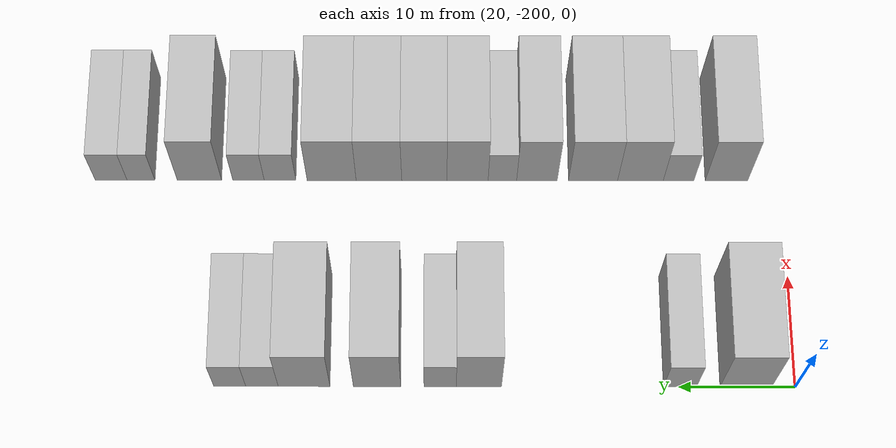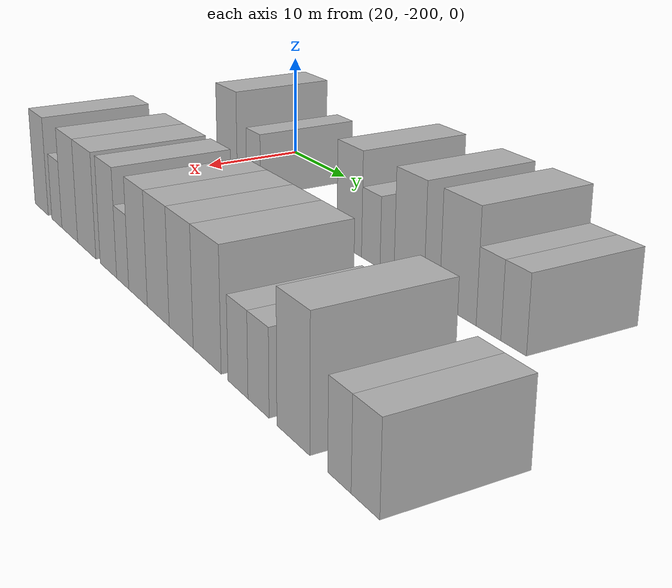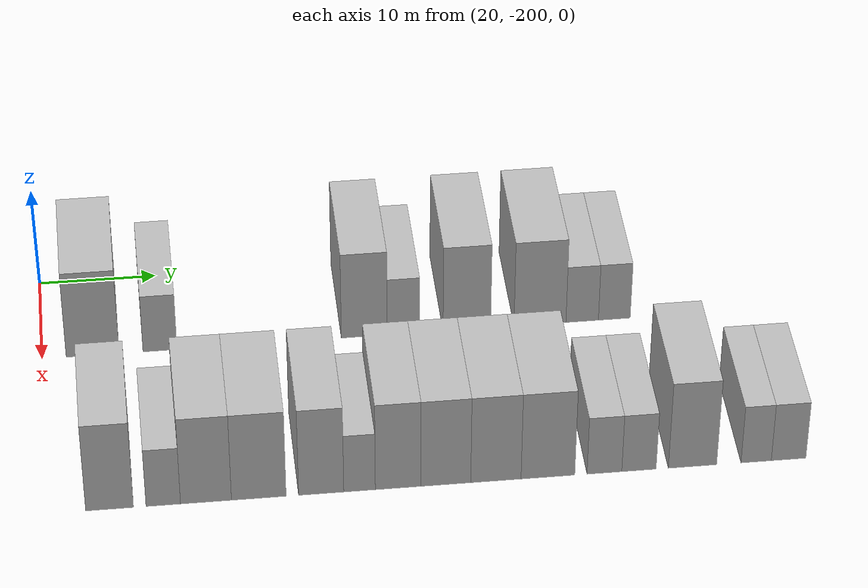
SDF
<sdf version="1.6">
 <world name="default">
  <model name="building_1">
   <static>1</static>
   <pose>25.0000 -195.7773 0 0.000000 0.000000 0.000000</pose>
   <link name="link">
    <pose>0 0 4.50 0 0 0</pose>
    <collision name="collision"><geometry><box><size>10.0000 4.4454 9.0000</size></box></geometry></collision>
    <visual name="visual">
     <cast_shadows>0</cast_shadows>
     <geometry><box><size>10.0000 4.4454 9.0000</size></box></geometry>
     <material>
      <script>
       <uri>model://HANNAS_wall/materials/scripts</uri>
       <uri>model://HANNAS_wall/materials/textures</uri>
       <name>vrc/HANNAS_wall</name>
      </script>
     </material>
    </visual>
   </link>
  </model>
  <model name="building_2">
   <static>1</static>
   <pose>25.0000 -190.1237 0 0.000000 0.000000 0.000000</pose>
   <link name="link">
    <pose>0 0 3.00 0 0 0</pose>
    <collision name="collision"><geometry><box><size>10.0000 2.8618 6.0000</size></box></geometry></collision>
    <visual name="visual">
     <cast_shadows>0</cast_shadows>
     <geometry><box><size>10.0000 2.8618 6.0000</size></box></geometry>
     <material>
      <script>
       <uri>model://HANNAS_wall/materials/scripts</uri>
       <uri>model://HANNAS_wall/materials/textures</uri>
       <name>vrc/HANNAS_wall</name>
      </script>
     </material>
    </visual>
   </link>
  </model>
  <model name="building_3">
   <static>1</static>
   <pose>25.0000 -172.8571 0 0.000000 0.000000 0.000000</pose>
   <link name="link">
    <pose>0 0 4.50 0 0 0</pose>
    <collision name="collision"><geometry><box><size>10.0000 3.8905 9.0000</size></box></geometry></collision>
    <visual name="visual">
     <cast_shadows>0</cast_shadows>
     <geometry><box><size>10.0000 3.8905 9.0000</size></box></geometry>
     <material>
      <script>
       <uri>model://HANNAS_wall/materials/scripts</uri>
       <uri>model://HANNAS_wall/materials/textures</uri>
       <name>vrc/HANNAS_wall</name>
      </script>
     </material>
    </visual>
   </link>
  </model>
  <model name="building_4">
   <static>1</static>
   <pose>25.0000 -169.5295 0 0.000000 0.000000 0.000000</pose>
   <link name="link">
    <pose>0 0 3.00 0 0 0</pose>
    <collision name="collision"><geometry><box><size>10.0000 2.7647 6.0000</size></box></geometry></collision>
    <visual name="visual">
     <cast_shadows>0</cast_shadows>
     <geometry><box><size>10.0000 2.7647 6.0000</size></box></geometry>
     <material>
      <script>
       <uri>model://HANNAS_wall/materials/scripts</uri>
       <uri>model://HANNAS_wall/materials/textures</uri>
       <name>vrc/HANNAS_wall</name>
      </script>
     </material>
    </visual>
   </link>
  </model>
  <model name="building_5">
   <static>1</static>
   <pose>25.0000 -164.1152 0 0.000000 0.000000 0.000000</pose>
   <link name="link">
    <pose>0 0 4.50 0 0 0</pose>
    <collision name="collision"><geometry><box><size>10.0000 4.0638 9.0000</size></box></geometry></collision>
    <visual name="visual">
     <cast_shadows>0</cast_shadows>
     <geometry><box><size>10.0000 4.0638 9.0000</size></box></geometry>
     <material>
      <script>
       <uri>model://HANNAS_wall/materials/scripts</uri>
       <uri>model://HANNAS_wall/materials/textures</uri>
       <name>vrc/HANNAS_wall</name>
      </script>
     </material>
    </visual>
   </link>
  </model>
  <model name="building_6">
   <static>1</static>
   <pose>25.0000 -157.8585 0 0.000000 0.000000 0.000000</pose>
   <link name="link">
    <pose>0 0 4.50 0 0 0</pose>
    <collision name="collision"><geometry><box><size>10.0000 4.4497 9.0000</size></box></geometry></collision>
    <visual name="visual">
     <cast_shadows>0</cast_shadows>
     <geometry><box><size>10.0000 4.4497 9.0000</size></box></geometry>
     <material>
      <script>
       <uri>model://HANNAS_wall/materials/scripts</uri>
       <uri>model://HANNAS_wall/materials/textures</uri>
       <name>vrc/HANNAS_wall</name>
      </script>
     </material>
    </visual>
   </link>
  </model>
  <model name="building_7">
   <static>1</static>
   <pose>25.0000 -154.2386 0 0.000000 0.000000 0.000000</pose>
   <link name="link">
    <pose>0 0 3.00 0 0 0</pose>
    <collision name="collision"><geometry><box><size>10.0000 2.7901 6.0000</size></box></geometry></collision>
    <visual name="visual">
     <cast_shadows>0</cast_shadows>
     <geometry><box><size>10.0000 2.7901 6.0000</size></box></geometry>
     <material>
      <script>
       <uri>model://HANNAS_wall/materials/scripts</uri>
       <uri>model://HANNAS_wall/materials/textures</uri>
       <name>vrc/HANNAS_wall</name>
      </script>
     </material>
    </visual>
   </link>
  </model>
  <model name="building_8">
   <static>1</static>
   <pose>25.0000 -151.4736 0 0.000000 0.000000 0.000000</pose>
   <link name="link">
    <pose>0 0 3.00 0 0 0</pose>
    <collision name="collision"><geometry><box><size>10.0000 2.7399 6.0000</size></box></geometry></collision>
    <visual name="visual">
     <cast_shadows>0</cast_shadows>
     <geometry><box><size>10.0000 2.7399 6.0000</size></box></geometry>
     <material>
      <script>
       <uri>model://HANNAS_wall/materials/scripts</uri>
       <uri>model://HANNAS_wall/materials/textures</uri>
       <name>vrc/HANNAS_wall</name>
      </script>
     </material>
    </visual>
   </link>
  </model>
  <model name="building_85">
   <static>1</static>
   <pose>44.0000 -195.0962 0 0.000000 0.000000 0.000000</pose>
   <link name="link">
    <pose>0 0 4.50 0 0 0</pose>
    <collision name="collision"><geometry><box><size>10.0000 3.8077 9.0000</size></box></geometry></collision>
    <visual name="visual">
     <cast_shadows>0</cast_shadows>
     <geometry><box><size>10.0000 3.8077 9.0000</size></box></geometry>
     <material>
      <script>
       <uri>model://HANNAS_wall/materials/scripts</uri>
       <uri>model://HANNAS_wall/materials/textures</uri>
       <name>vrc/HANNAS_wall</name>
      </script>
     </material>
    </visual>
   </link>
  </model>
  <model name="building_86">
   <static>1</static>
   <pose>44.0000 -190.8174 0 0.000000 0.000000 0.000000</pose>
   <link name="link">
    <pose>0 0 3.00 0 0 0</pose>
    <collision name="collision"><geometry><box><size>10.0000 2.7499 6.0000</size></box></geometry></collision>
    <visual name="visual">
     <cast_shadows>0</cast_shadows>
     <geometry><box><size>10.0000 2.7499 6.0000</size></box></geometry>
     <material>
      <script>
       <uri>model://HANNAS_wall/materials/scripts</uri>
       <uri>model://HANNAS_wall/materials/textures</uri>
       <name>vrc/HANNAS_wall</name>
      </script>
     </material>
    </visual>
   </link>
  </model>
  <model name="building_87">
   <static>1</static>
   <pose>44.0000 -187.4049 0 0.000000 0.000000 0.000000</pose>
   <link name="link">
    <pose>0 0 4.50 0 0 0</pose>
    <collision name="collision"><geometry><box><size>10.0000 4.0750 9.0000</size></box></geometry></collision>
    <visual name="visual">
     <cast_shadows>0</cast_shadows>
     <geometry><box><size>10.0000 4.0750 9.0000</size></box></geometry>
     <material>
      <script>
       <uri>model://HANNAS_wall/materials/scripts</uri>
       <uri>model://HANNAS_wall/materials/textures</uri>
       <name>vrc/HANNAS_wall</name>
      </script>
     </material>
    </visual>
   </link>
  </model>
  <model name="building_88">
   <static>1</static>
   <pose>44.0000 -183.1729 0 0.000000 0.000000 0.000000</pose>
   <link name="link">
    <pose>0 0 4.50 0 0 0</pose>
    <collision name="collision"><geometry><box><size>10.0000 4.3891 9.0000</size></box></geometry></collision>
    <visual name="visual">
     <cast_shadows>0</cast_shadows>
     <geometry><box><size>10.0000 4.3891 9.0000</size></box></geometry>
     <material>
      <script>
       <uri>model://HANNAS_wall/materials/scripts</uri>
       <uri>model://HANNAS_wall/materials/textures</uri>
       <name>vrc/HANNAS_wall</name>
      </script>
     </material>
    </visual>
   </link>
  </model>
  <model name="building_89">
   <static>1</static>
   <pose>44.0000 -178.1632 0 0.000000 0.000000 0.000000</pose>
   <link name="link">
    <pose>0 0 4.50 0 0 0</pose>
    <collision name="collision"><geometry><box><size>10.0000 3.6302 9.0000</size></box></geometry></collision>
    <visual name="visual">
     <cast_shadows>0</cast_shadows>
     <geometry><box><size>10.0000 3.6302 9.0000</size></box></geometry>
     <material>
      <script>
       <uri>model://HANNAS_wall/materials/scripts</uri>
       <uri>model://HANNAS_wall/materials/textures</uri>
       <name>vrc/HANNAS_wall</name>
      </script>
     </material>
    </visual>
   </link>
  </model>
  <model name="building_90">
   <static>1</static>
   <pose>44.0000 -175.0751 0 0.000000 0.000000 0.000000</pose>
   <link name="link">
    <pose>0 0 3.00 0 0 0</pose>
    <collision name="collision"><geometry><box><size>10.0000 2.5460 6.0000</size></box></geometry></collision>
    <visual name="visual">
     <cast_shadows>0</cast_shadows>
     <geometry><box><size>10.0000 2.5460 6.0000</size></box></geometry>
     <material>
      <script>
       <uri>model://HANNAS_wall/materials/scripts</uri>
       <uri>model://HANNAS_wall/materials/textures</uri>
       <name>vrc/HANNAS_wall</name>
      </script>
     </material>
    </visual>
   </link>
  </model>
  <model name="building_91">
   <static>1</static>
   <pose>44.0000 -171.9619 0 0.000000 0.000000 0.000000</pose>
   <link name="link">
    <pose>0 0 4.50 0 0 0</pose>
    <collision name="collision"><geometry><box><size>10.0000 3.6804 9.0000</size></box></geometry></collision>
    <visual name="visual">
     <cast_shadows>0</cast_shadows>
     <geometry><box><size>10.0000 3.6804 9.0000</size></box></geometry>
     <material>
      <script>
       <uri>model://HANNAS_wall/materials/scripts</uri>
       <uri>model://HANNAS_wall/materials/textures</uri>
       <name>vrc/HANNAS_wall</name>
      </script>
     </material>
    </visual>
   </link>
  </model>
  <model name="building_92">
   <static>1</static>
   <pose>44.0000 -168.1049 0 0.000000 0.000000 0.000000</pose>
   <link name="link">
    <pose>0 0 4.50 0 0 0</pose>
    <collision name="collision"><geometry><box><size>10.0000 4.0336 9.0000</size></box></geometry></collision>
    <visual name="visual">
     <cast_shadows>0</cast_shadows>
     <geometry><box><size>10.0000 4.0336 9.0000</size></box></geometry>
     <material>
      <script>
       <uri>model://HANNAS_wall/materials/scripts</uri>
       <uri>model://HANNAS_wall/materials/textures</uri>
       <name>vrc/HANNAS_wall</name>
      </script>
     </material>
    </visual>
   </link>
  </model>
  <model name="building_93">
   <static>1</static>
   <pose>44.0000 -164.0470 0 0.000000 0.000000 0.000000</pose>
   <link name="link">
    <pose>0 0 4.50 0 0 0</pose>
    <collision name="collision"><geometry><box><size>10.0000 4.0822 9.0000</size></box></geometry></collision>
    <visual name="visual">
     <cast_shadows>0</cast_shadows>
     <geometry><box><size>10.0000 4.0822 9.0000</size></box></geometry>
     <material>
      <script>
       <uri>model://HANNAS_wall/materials/scripts</uri>
       <uri>model://HANNAS_wall/materials/textures</uri>
       <name>vrc/HANNAS_wall</name>
      </script>
     </material>
    </visual>
   </link>
  </model>
  <model name="building_94">
   <static>1</static>
   <pose>44.0000 -159.8199 0 0.000000 0.000000 0.000000</pose>
   <link name="link">
    <pose>0 0 4.50 0 0 0</pose>
    <collision name="collision"><geometry><box><size>10.0000 4.3719 9.0000</size></box></geometry></collision>
    <visual name="visual">
     <cast_shadows>0</cast_shadows>
     <geometry><box><size>10.0000 4.3719 9.0000</size></box></geometry>
     <material>
      <script>
       <uri>model://HANNAS_wall/materials/scripts</uri>
       <uri>model://HANNAS_wall/materials/textures</uri>
       <name>vrc/HANNAS_wall</name>
      </script>
     </material>
    </visual>
   </link>
  </model>
  <model name="building_95">
   <static>1</static>
   <pose>44.0000 -155.2179 0 0.000000 0.000000 0.000000</pose>
   <link name="link">
    <pose>0 0 3.00 0 0 0</pose>
    <collision name="collision"><geometry><box><size>10.0000 2.8320 6.0000</size></box></geometry></collision>
    <visual name="visual">
     <cast_shadows>0</cast_shadows>
     <geometry><box><size>10.0000 2.8320 6.0000</size></box></geometry>
     <material>
      <script>
       <uri>model://HANNAS_wall/materials/scripts</uri>
       <uri>model://HANNAS_wall/materials/textures</uri>
       <name>vrc/HANNAS_wall</name>
      </script>
     </material>
    </visual>
   </link>
  </model>
  <model name="building_96">
   <static>1</static>
   <pose>44.0000 -152.3988 0 0.000000 0.000000 0.000000</pose>
   <link name="link">
    <pose>0 0 3.00 0 0 0</pose>
    <collision name="collision"><geometry><box><size>10.0000 2.8062 6.0000</size></box></geometry></collision>
    <visual name="visual">
     <cast_shadows>0</cast_shadows>
     <geometry><box><size>10.0000 2.8062 6.0000</size></box></geometry>
     <material>
      <script>
       <uri>model://HANNAS_wall/materials/scripts</uri>
       <uri>model://HANNAS_wall/materials/textures</uri>
       <name>vrc/HANNAS_wall</name>
      </script>
     </material>
    </visual>
   </link>
  </model>
  <model name="building_97">
   <static>1</static>
   <pose>44.0000 -148.0163 0 0.000000 0.000000 0.000000</pose>
   <link name="link">
    <pose>0 0 4.50 0 0 0</pose>
    <collision name="collision"><geometry><box><size>10.0000 3.9588 9.0000</size></box></geometry></collision>
    <visual name="visual">
     <cast_shadows>0</cast_shadows>
     <geometry><box><size>10.0000 3.9588 9.0000</size></box></geometry>
     <material>
      <script>
       <uri>model://HANNAS_wall/materials/scripts</uri>
       <uri>model://HANNAS_wall/materials/textures</uri>
       <name>vrc/HANNAS_wall</name>
      </script>
     </material>
    </visual>
   </link>
  </model>
  <model name="building_98">
   <static>1</static>
   <pose>44.0000 -142.7936 0 0.000000 0.000000 0.000000</pose>
   <link name="link">
    <pose>0 0 3.00 0 0 0</pose>
    <collision name="collision"><geometry><box><size>10.0000 2.4866 6.0000</size></box></geometry></collision>
    <visual name="visual">
     <cast_shadows>0</cast_shadows>
     <geometry><box><size>10.0000 2.4866 6.0000</size></box></geometry>
     <material>
      <script>
       <uri>model://HANNAS_wall/materials/scripts</uri>
       <uri>model://HANNAS_wall/materials/textures</uri>
       <name>vrc/HANNAS_wall</name>
      </script>
     </material>
    </visual>
   </link>
  </model>
  <model name="building_99">
   <static>1</static>
   <pose>44.0000 -140.1272 0 0.000000 0.000000 0.000000</pose>
   <link name="link">
    <pose>0 0 3.00 0 0 0</pose>
    <collision name="collision"><geometry><box><size>10.0000 2.8462 6.0000</size></box></geometry></collision>
    <visual name="visual">
     <cast_shadows>0</cast_shadows>
     <geometry><box><size>10.0000 2.8462 6.0000</size></box></geometry>
     <material>
      <script>
       <uri>model://HANNAS_wall/materials/scripts</uri>
       <uri>model://HANNAS_wall/materials/textures</uri>
       <name>vrc/HANNAS_wall</name>
      </script>
     </material>
    </visual>
   </link>
  </model>
 </world>
</sdf>
